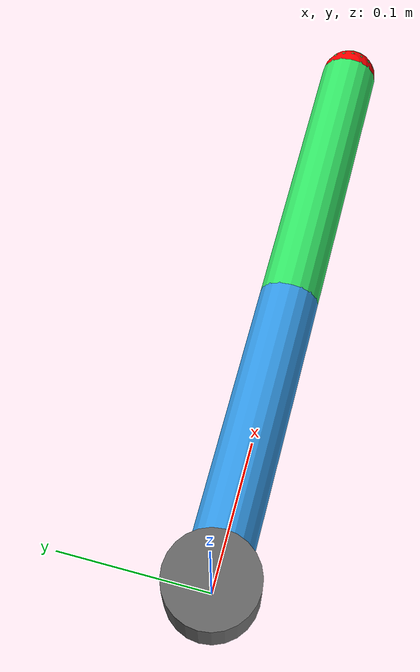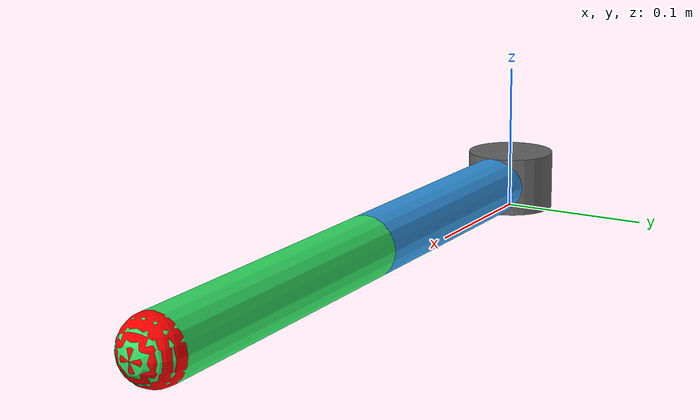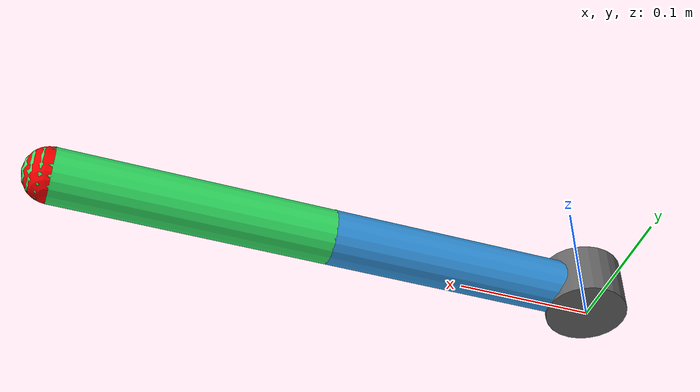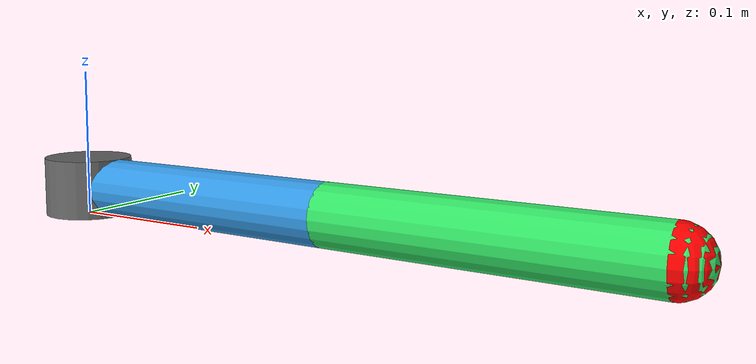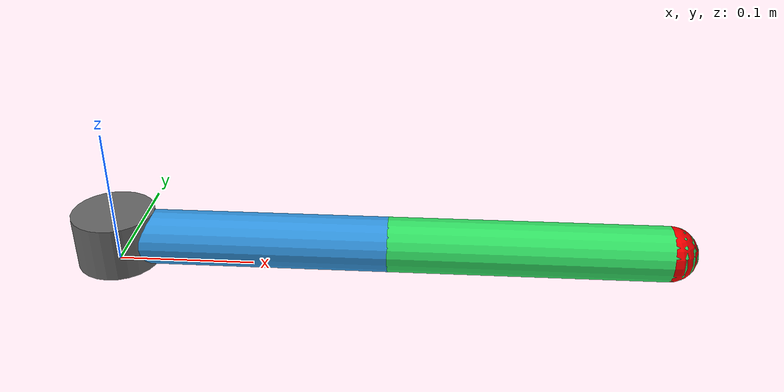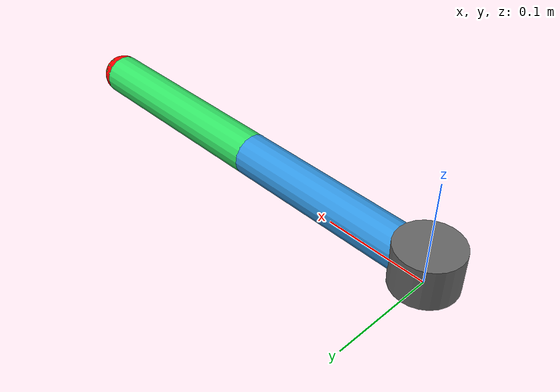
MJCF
<mujoco model="arm_2link">
  <compiler angle="degree" coordinate="local" />
  <option timestep="0.01" gravity="0 0 -9.81"/>
  <worldbody>
    <body name="base" pos="0 0 0.02">
      <geom type="cylinder" size="0.03 0.02" rgba="0.4 0.4 0.4 1"/>
      <body name="link1" pos="0 0 0">
        <joint name="joint1" type="hinge" axis="0 0 1" range="-90 90" damping="0.05"/>
        <geom type="capsule" fromto="0 0 0 0.2 0 0" size="0.02" rgba="0.2 0.6 0.9 1"/>
        <body name="link2" pos="0.2 0 0">
          <joint name="joint2" type="hinge" axis="0 0 1" range="-90 90" damping="0.05"/>
          <geom type="capsule" fromto="0 0 0 0.2 0 0" size="0.02" rgba="0.2 0.9 0.4 1"/>
          <site name="ee_site" pos="0.2 0 0" size="0.02" rgba="1 0 0 1"/>
        </body>
      </body>
    </body>
  </worldbody>
  <actuator>
    <motor name="motor1" joint="joint1" ctrlrange="-1 1" gear="1"/>
    <motor name="motor2" joint="joint2" ctrlrange="-1 1" gear="1"/>
  </actuator>
  <keyframe>
    <key name="home" qpos="0 0" ctrl="0 0"/>
  </keyframe>
</mujoco>
